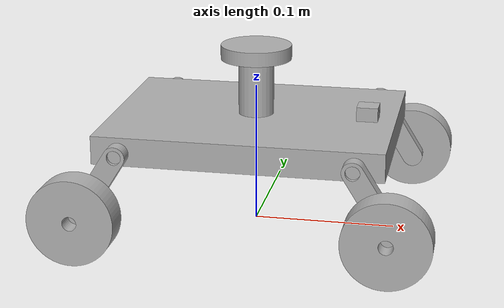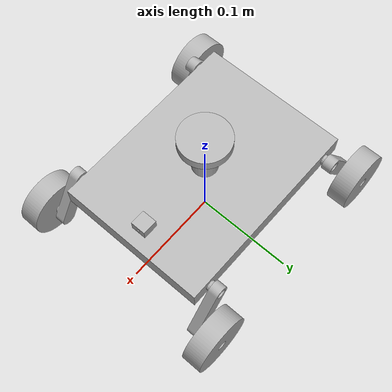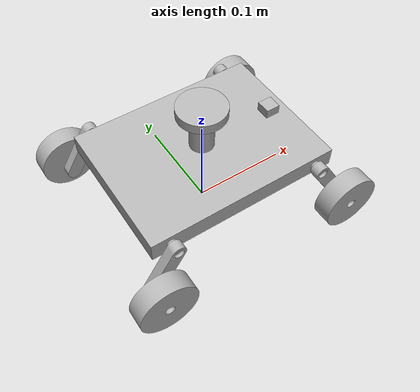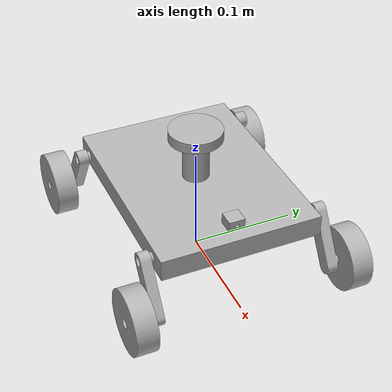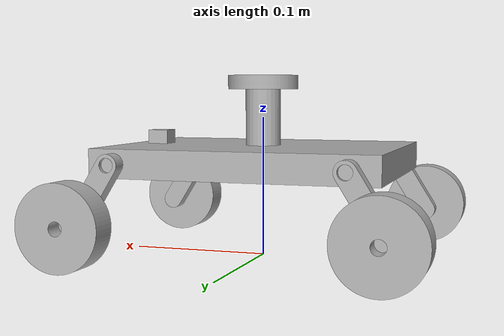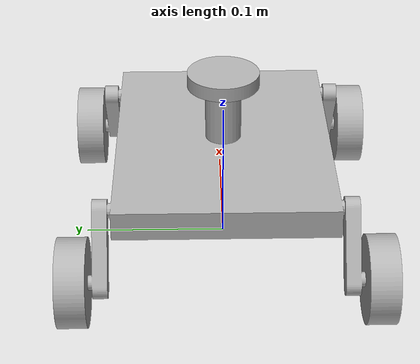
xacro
<?xml version="1.0" ?>
<robot name="deliverybot" xmlns:xacro="http://www.ros.org/wiki/xacro">

<xacro:include filename="$(find deliverybot_description)/urdf/materials.xacro" />
<xacro:include filename="$(find deliverybot_description)/urdf/deliverybot.trans" />
<xacro:include filename="$(find deliverybot_description)/urdf/deliverybot.gazebo" />
<link name="base_link">
  <inertial>
    <origin xyz="2.0576851223912385e-14 0.0 0.07094584265517533" rpy="0 0 0"/>
    <mass value="0.6601431395428371"/>
    <inertia ixx="0.001257" iyy="0.002184" izz="0.003357" ixy="0.0" iyz="0.0" ixz="0.0"/>
  </inertial>
  <visual>
    <origin xyz="0 0 0" rpy="0 0 0"/>
    <geometry>
      <mesh filename="package://deliverybot_description/meshes/base_link.stl" scale="0.001 0.001 0.001"/>
    </geometry>
    <material name="silver"/>
  </visual>
  <collision>
    <origin xyz="0 0 0" rpy="0 0 0"/>
    <geometry>
      <mesh filename="package://deliverybot_description/meshes/base_link.stl" scale="0.001 0.001 0.001"/>
    </geometry>
  </collision>
</link>

<link name="frontl1_1">
  <inertial>
    <origin xyz="0.01546773975084105 0.0011589732013603665 -0.02477278912176316" rpy="0 0 0"/>
    <mass value="0.009898876641599642"/>
    <inertia ixx="2e-06" iyy="3e-06" izz="1e-06" ixy="0.0" iyz="-0.0" ixz="1e-06"/>
  </inertial>
  <visual>
    <origin xyz="-0.08 0.085 -0.07" rpy="0 0 0"/>
    <geometry>
      <mesh filename="package://deliverybot_description/meshes/frontl1_1.stl" scale="0.001 0.001 0.001"/>
    </geometry>
    <material name="silver"/>
  </visual>
  <collision>
    <origin xyz="-0.08 0.085 -0.07" rpy="0 0 0"/>
    <geometry>
      <mesh filename="package://deliverybot_description/meshes/frontl1_1.stl" scale="0.001 0.001 0.001"/>
    </geometry>
  </collision>
</link>

<link name="backl1_1">
  <inertial>
    <origin xyz="-0.015467739750841036 0.0011589732013603665 -0.02477278912176316" rpy="0 0 0"/>
    <mass value="0.009898876641599642"/>
    <inertia ixx="2e-06" iyy="3e-06" izz="1e-06" ixy="-0.0" iyz="-0.0" ixz="-1e-06"/>
  </inertial>
  <visual>
    <origin xyz="0.08 0.085 -0.07" rpy="0 0 0"/>
    <geometry>
      <mesh filename="package://deliverybot_description/meshes/backl1_1.stl" scale="0.001 0.001 0.001"/>
    </geometry>
    <material name="silver"/>
  </visual>
  <collision>
    <origin xyz="0.08 0.085 -0.07" rpy="0 0 0"/>
    <geometry>
      <mesh filename="package://deliverybot_description/meshes/backl1_1.stl" scale="0.001 0.001 0.001"/>
    </geometry>
  </collision>
</link>

<link name="frontl2_1">
  <inertial>
    <origin xyz="0.015467739750753023 -0.0011589732013603943 -0.02477278912176304" rpy="0 0 0"/>
    <mass value="0.009898876641599573"/>
    <inertia ixx="2e-06" iyy="3e-06" izz="1e-06" ixy="-0.0" iyz="0.0" ixz="1e-06"/>
  </inertial>
  <visual>
    <origin xyz="-0.08 -0.085 -0.07" rpy="0 0 0"/>
    <geometry>
      <mesh filename="package://deliverybot_description/meshes/frontl2_1.stl" scale="0.001 0.001 0.001"/>
    </geometry>
    <material name="silver"/>
  </visual>
  <collision>
    <origin xyz="-0.08 -0.085 -0.07" rpy="0 0 0"/>
    <geometry>
      <mesh filename="package://deliverybot_description/meshes/frontl2_1.stl" scale="0.001 0.001 0.001"/>
    </geometry>
  </collision>
</link>

<link name="backl2_1">
  <inertial>
    <origin xyz="-0.015467739750753023 -0.0011589732013603943 -0.02477278912176304" rpy="0 0 0"/>
    <mass value="0.009898876641599573"/>
    <inertia ixx="2e-06" iyy="3e-06" izz="1e-06" ixy="0.0" iyz="0.0" ixz="-1e-06"/>
  </inertial>
  <visual>
    <origin xyz="0.08 -0.085 -0.07" rpy="0 0 0"/>
    <geometry>
      <mesh filename="package://deliverybot_description/meshes/backl2_1.stl" scale="0.001 0.001 0.001"/>
    </geometry>
    <material name="silver"/>
  </visual>
  <collision>
    <origin xyz="0.08 -0.085 -0.07" rpy="0 0 0"/>
    <geometry>
      <mesh filename="package://deliverybot_description/meshes/backl2_1.stl" scale="0.001 0.001 0.001"/>
    </geometry>
  </collision>
</link>

<link name="lidar_1">
  <inertial>
    <origin xyz="-3.618764437576268e-18 -7.237528875152536e-18 0.0049999999999999906" rpy="0 0 0"/>
    <mass value="0.02081305133003238"/>
    <inertia ixx="3e-06" iyy="3e-06" izz="7e-06" ixy="-0.0" iyz="-0.0" ixz="-0.0"/>
  </inertial>
  <visual>
    <origin xyz="-0.0 -0.0 -0.12" rpy="0 0 0"/>
    <geometry>
      <mesh filename="package://deliverybot_description/meshes/lidar_1.stl" scale="0.001 0.001 0.001"/>
    </geometry>
    <material name="silver"/>
  </visual>
  <collision>
    <origin xyz="-0.0 -0.0 -0.12" rpy="0 0 0"/>
    <geometry>
      <mesh filename="package://deliverybot_description/meshes/lidar_1.stl" scale="0.001 0.001 0.001"/>
    </geometry>
  </collision>
</link>

<link name="camera_1">
  <inertial>
    <origin xyz="-0.020073425871742517 4.7255862113405526e-15 0.0050000000000000044" rpy="0 0 0"/>
    <mass value="0.00235835929429756"/>
    <inertia ixx="0.0" iyy="0.0" izz="0.0" ixy="-0.0" iyz="-0.0" ixz="0.0"/>
  </inertial>
  <visual>
    <origin xyz="-0.1 -0.0 -0.08" rpy="0 0 0"/>
    <geometry>
      <mesh filename="package://deliverybot_description/meshes/camera_1.stl" scale="0.001 0.001 0.001"/>
    </geometry>
    <material name="silver"/>
  </visual>
  <collision>
    <origin xyz="-0.1 -0.0 -0.08" rpy="0 0 0"/>
    <geometry>
      <mesh filename="package://deliverybot_description/meshes/camera_1.stl" scale="0.001 0.001 0.001"/>
    </geometry>
  </collision>
</link>

<link name="front_wheel_1_1">
  <inertial>
    <origin xyz="-1.491862189340054e-14 -0.09499999999999999 -3.469446951953614e-18" rpy="0 0 0"/>
    <mass value="0.05112942043717382"/>
    <inertia ixx="1.4e-05" iyy="2.4e-05" izz="1.4e-05" ixy="0.0" iyz="0.0" ixz="0.0"/>
  </inertial>
  <visual>
    <origin xyz="-0.105 0.006 -0.03" rpy="0 0 0"/>
    <geometry>
      <mesh filename="package://deliverybot_description/meshes/front_wheel_1_1.stl" scale="0.001 0.001 0.001"/>
    </geometry>
    <material name="silver"/>
  </visual>
  <collision>
    <origin xyz="-0.105 0.006 -0.03" rpy="0 0 0"/>
    <geometry>
      <mesh filename="package://deliverybot_description/meshes/front_wheel_1_1.stl" scale="0.001 0.001 0.001"/>
    </geometry>
  </collision>
</link>

<link name="front_wheel_2_1">
  <inertial>
    <origin xyz="-1.491862189340054e-14 0.05499999999999998 0.0" rpy="0 0 0"/>
    <mass value="0.051129420437173806"/>
    <inertia ixx="1.4e-05" iyy="2.4e-05" izz="1.4e-05" ixy="-0.0" iyz="-0.0" ixz="0.0"/>
  </inertial>
  <visual>
    <origin xyz="-0.105 -0.046 -0.03" rpy="0 0 0"/>
    <geometry>
      <mesh filename="package://deliverybot_description/meshes/front_wheel_2_1.stl" scale="0.001 0.001 0.001"/>
    </geometry>
    <material name="silver"/>
  </visual>
  <collision>
    <origin xyz="-0.105 -0.046 -0.03" rpy="0 0 0"/>
    <geometry>
      <mesh filename="package://deliverybot_description/meshes/front_wheel_2_1.stl" scale="0.001 0.001 0.001"/>
    </geometry>
  </collision>
</link>

<link name="back_wheel_1_1">
  <inertial>
    <origin xyz="1.491862189340054e-14 -0.06499999999999997 -3.469446951953614e-18" rpy="0 0 0"/>
    <mass value="0.05112942043717382"/>
    <inertia ixx="1.4e-05" iyy="2.4e-05" izz="1.4e-05" ixy="0.0" iyz="0.0" ixz="-0.0"/>
  </inertial>
  <visual>
    <origin xyz="0.105 0.036 -0.03" rpy="0 0 0"/>
    <geometry>
      <mesh filename="package://deliverybot_description/meshes/back_wheel_1_1.stl" scale="0.001 0.001 0.001"/>
    </geometry>
    <material name="silver"/>
  </visual>
  <collision>
    <origin xyz="0.105 0.036 -0.03" rpy="0 0 0"/>
    <geometry>
      <mesh filename="package://deliverybot_description/meshes/back_wheel_1_1.stl" scale="0.001 0.001 0.001"/>
    </geometry>
  </collision>
</link>

<link name="back_wheel_2_1">
  <inertial>
    <origin xyz="1.491862189340054e-14 0.04499999999999998 -3.469446951953614e-18" rpy="0 0 0"/>
    <mass value="0.05112942043717382"/>
    <inertia ixx="1.4e-05" iyy="2.4e-05" izz="1.4e-05" ixy="0.0" iyz="-0.0" ixz="0.0"/>
  </inertial>
  <visual>
    <origin xyz="0.105 -0.056 -0.03" rpy="0 0 0"/>
    <geometry>
      <mesh filename="package://deliverybot_description/meshes/back_wheel_2_1.stl" scale="0.001 0.001 0.001"/>
    </geometry>
    <material name="silver"/>
  </visual>
  <collision>
    <origin xyz="0.105 -0.056 -0.03" rpy="0 0 0"/>
    <geometry>
      <mesh filename="package://deliverybot_description/meshes/back_wheel_2_1.stl" scale="0.001 0.001 0.001"/>
    </geometry>
  </collision>
</link>

<joint name="Rigid5" type="fixed">
  <origin xyz="0.08 -0.085 0.07" rpy="0 0 0"/>
  <parent link="base_link"/>
  <child link="frontl1_1"/>
</joint>

<joint name="Rigid6" type="fixed">
  <origin xyz="-0.08 -0.085 0.07" rpy="0 0 0"/>
  <parent link="base_link"/>
  <child link="backl1_1"/>
</joint>

<joint name="Rigid7" type="fixed">
  <origin xyz="0.08 0.085 0.07" rpy="0 0 0"/>
  <parent link="base_link"/>
  <child link="frontl2_1"/>
</joint>

<joint name="Rigid8" type="fixed">
  <origin xyz="-0.08 0.085 0.07" rpy="0 0 0"/>
  <parent link="base_link"/>
  <child link="backl2_1"/>
</joint>

<joint name="Rigid9" type="fixed">
  <origin xyz="0.0 0.0 0.12" rpy="0 0 0"/>
  <parent link="base_link"/>
  <child link="lidar_1"/>
</joint>

<joint name="Rigid10" type="fixed">
  <origin xyz="0.1 0.0 0.08" rpy="0 0 0"/>
  <parent link="base_link"/>
  <child link="camera_1"/>
</joint>

<joint name="Revolute1" type="continuous">
  <origin xyz="0.025 0.079 -0.04" rpy="0 0 0"/>
  <parent link="frontl1_1"/>
  <child link="front_wheel_1_1"/>
  <axis xyz="0.0 1.0 0.0"/>

</joint>

<joint name="Revolute2" type="continuous">
  <origin xyz="0.025 -0.039 -0.04" rpy="0 0 0"/>
  <parent link="frontl2_1"/>
  <child link="front_wheel_2_1"/>
  <axis xyz="0.0 1.0 0.0"/>

</joint>

<joint name="Revolute3" type="continuous">
  <origin xyz="-0.025 0.049 -0.04" rpy="0 0 0"/>
  <parent link="backl1_1"/>
  <child link="back_wheel_1_1"/>
  <axis xyz="0.0 1.0 0.0"/>

</joint>

<joint name="Revolute4" type="continuous">
  <origin xyz="-0.025 -0.029 -0.04" rpy="0 0 0"/>
  <parent link="backl2_1"/>
  <child link="back_wheel_2_1"/>
  <axis xyz="0.0 1.0 0.0"/>
</joint>

</robot>

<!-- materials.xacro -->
<robot name="deliverybot" xmlns:xacro="http://www.ros.org/wiki/xacro" >

<material name="silver">
  <color rgba="0.700 0.700 0.700 1.000"/>
</material>

</robot>

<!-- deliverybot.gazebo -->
<robot name="deliverybot" xmlns:xacro="http://www.ros.org/wiki/xacro" >

<xacro:property name="body_color" value="Gazebo/Silver" />

<gazebo>
  <plugin name="control" filename="libgazebo_ros_control.so"/>
</gazebo>
<gazebo reference="base_link">
  <material>${body_color}</material>
  <mu1>0.2</mu1>
  <mu2>0.2</mu2>
  <selfCollide>true</selfCollide>
  <gravity>true</gravity>
</gazebo>

<gazebo reference="frontl1_1">
  <material>${body_color}</material>
  <mu1>0.2</mu1>
  <mu2>0.2</mu2>
  <selfCollide>true</selfCollide>
</gazebo>

<gazebo reference="backl1_1">
  <material>${body_color}</material>
  <mu1>0.2</mu1>
  <mu2>0.2</mu2>
  <selfCollide>true</selfCollide>
</gazebo>

<gazebo reference="frontl2_1">
  <material>${body_color}</material>
  <mu1>0.2</mu1>
  <mu2>0.2</mu2>
  <selfCollide>true</selfCollide>
</gazebo>

<gazebo reference="backl2_1">
  <material>${body_color}</material>
  <mu1>0.2</mu1>
  <mu2>0.2</mu2>
  <selfCollide>true</selfCollide>
</gazebo>

<gazebo reference="lidar_1">
  <material>${body_color}</material>
  <mu1>0.2</mu1>
  <mu2>0.2</mu2>
  <selfCollide>true</selfCollide>
</gazebo>

<gazebo reference="camera_1">
  <material>${body_color}</material>
  <mu1>0.2</mu1>
  <mu2>0.2</mu2>
  <selfCollide>true</selfCollide>
</gazebo>

<gazebo reference="front_wheel_1_1">
  <material>${body_color}</material>
  <mu1>0.2</mu1>
  <mu2>0.2</mu2>
  <selfCollide>true</selfCollide>
</gazebo>

<gazebo reference="front_wheel_2_1">
  <material>${body_color}</material>
  <mu1>0.2</mu1>
  <mu2>0.2</mu2>
  <selfCollide>true</selfCollide>
</gazebo>

<gazebo reference="back_wheel_1_1">
  <material>${body_color}</material>
  <mu1>0.2</mu1>
  <mu2>0.2</mu2>
  <selfCollide>true</selfCollide>
</gazebo>

<gazebo reference="back_wheel_2_1">
  <material>${body_color}</material>
  <mu1>0.2</mu1>
  <mu2>0.2</mu2>
  <selfCollide>true</selfCollide>
</gazebo>

<!-- Skid Steer 4 wheel-->
<gazebo>
  <plugin name="skid_steer_drive_controller" filename="libgazebo_ros_skid_steer_drive.so">
    <updateRate>100.0</updateRate>
    <robotNamespace>/</robotNamespace>
    <leftFrontJoint>Revolute2</leftFrontJoint>
    <rightFrontJoint>Revolute1</rightFrontJoint>
    <leftRearJoint>Revolute4</leftRearJoint>
    <rightRearJoint>Revolute3</rightRearJoint>
    <wheelSeparation>0.4</wheelSeparation>
    <wheelDiameter>0.215</wheelDiameter>
    <robotBaseFrame>base_link</robotBaseFrame>
    <torque>20</torque>
    <topicName>cmd_vel</topicName>
    <broadcastTF>true</broadcastTF>
  </plugin>
</gazebo>

<!-- Lidar plugin -->
<gazebo reference="lidar_1">
    <sensor type="ray" name="lidar_1">
      <pose>0 0 0 0 0 0</pose>
      <visualize>false</visualize>
      <update_rate>40</update_rate>
      <ray>
        <scan>
          <horizontal>
            <samples>720</samples>
            <resolution>1</resolution>
            <min_angle>-3.14</min_angle>
            <max_angle>3.14</max_angle>
          </horizontal>
        </scan>
        <range>
          <min>0.5</min>
          <max>30.0</max>
          <resolution>0.01</resolution>
        </range>
        <noise>
          <type>gaussian</type>
          <mean>0.0</mean>
          <stddev>0.01</stddev>
        </noise>
      </ray>
      <plugin name="gazebo_ros_lidar" filename="libgazebo_ros_laser.so">
        <topicName>/scan</topicName>
        <frameName>lidar_1</frameName>
      </plugin>
    </sensor>
  </gazebo>

  <!-- camera -->
  <gazebo reference="camera_1">
    <sensor type="camera" name="camera1">
      <update_rate>30.0</update_rate>
      <camera name="head">
        <horizontal_fov>1.3962634</horizontal_fov>
        <image>
          <width>800</width>
          <height>800</height>
          <format>R8G8B8</format>
        </image>
        <clip>
          <near>0.1</near>
          <far>300</far>
        </clip>
        <noise>
          <type>gaussian</type>
          <!-- Noise is sampled independently per pixel on each frame.
               That pixel's noise value is added to each of its color
               channels, which at that point lie in the range [0,1]. -->
          <mean>0.0</mean>
          <stddev>0.007</stddev>
        </noise>
      </camera>
      <plugin name="camera_controller" filename="libgazebo_ros_camera.so">
        <alwaysOn>true</alwaysOn>
        <updateRate>0.0</updateRate>
        <cameraName>rrbot/camera1</cameraName>
        <imageTopicName>image_raw</imageTopicName>
        <cameraInfoTopicName>camera_info</cameraInfoTopicName>
        <frameName>camera_1</frameName>
        <hackBaseline>0.07</hackBaseline>
        <distortionK1>0.0</distortionK1>
        <distortionK2>0.0</distortionK2>
        <distortionK3>0.0</distortionK3>
        <distortionT1>0.0</distortionT1>
        <distortionT2>0.0</distortionT2>
      </plugin>
    </sensor>
  </gazebo>

</robot>
